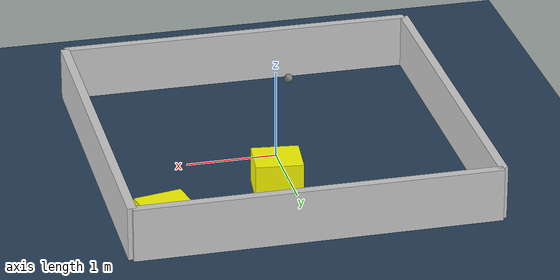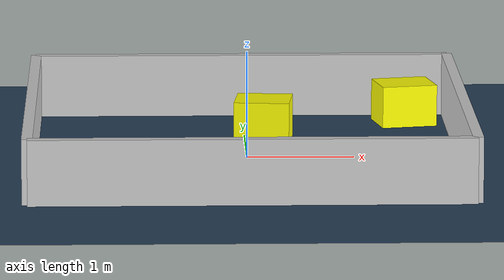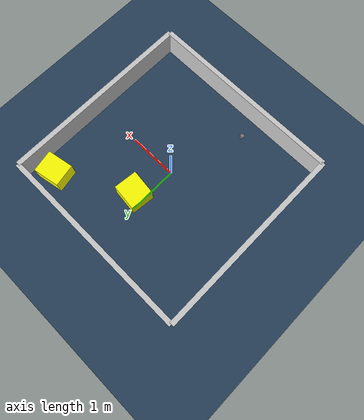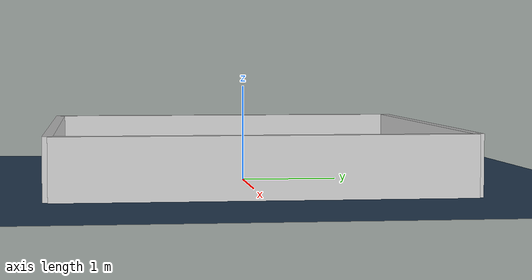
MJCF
<?xml version="1.0" ?>
<mujoco model="generated_environment">
  <option timestep="0.01" integrator="RK4" cone="elliptic"/>
  <default>
    <geom density="1"/>
  </default>
  <asset>
    <texture builtin="gradient" height="3072" rgb1="0.3 0.5 0.7" rgb2="0 0 0" type="skybox" width="512"/>
    <texture builtin="checker" height="300" mark="edge" markrgb="0.8 0.8 0.8" name="groundplane" rgb1="0.2 0.3 0.4" rgb2="0.1 0.2 0.3" type="2d" width="300"/>
    <material name="groundplane" reflectance="0.2" texrepeat="5 5" texture="groundplane" texuniform="true"/>
    <material name="robot" rgba="0.0 1.0 0.0 1"/>
  </asset>
  <worldbody>
    <light dir="0 0 -1" directional="true" pos="0 0 1.5"/>
    <geom condim="4" friction="1.0 0.005 0.001" material="groundplane" name="floor" size="0 0 0.05" type="plane"/>
    <body name="walls">
      <geom name="wall_1" condim="4" pos="-2.0 0.0 0.3" rgba="0.800000011920929 0.800000011920929 0.800000011920929 1.0" size="0.05 2.0 0.3" type="box"/>
      <geom name="wall_2" condim="4" pos="2.0 0.0 0.3" rgba="0.800000011920929 0.800000011920929 0.800000011920929 1.0" size="0.05 2.0 0.3" type="box"/>
      <geom name="wall_3" condim="4" pos="0.0 -2.0 0.3" rgba="0.800000011920929 0.800000011920929 0.800000011920929 1.0" size="2.0 0.05 0.3" type="box"/>
      <geom name="wall_4" condim="4" pos="0.0 2.0 0.3" rgba="0.800000011920929 0.800000011920929 0.800000011920929 1.0" size="2.0 0.05 0.3" type="box"/>
    </body>
    <body name="robot">
      <joint name="joint_x" type="slide" pos="0 0 0" axis="1 0 0"/>
      <joint name="joint_y" type="slide" pos="0 0 0" axis="0 1 0"/>
      <geom name="robot" type="sphere" pos="-0.49756151433657925 -1.4926843276451371 0.2" size="0.05" mass="5." friction="1.0 0.005 0.0001" condim="4"/>
      <site name="sensor_ball"/>
    </body>
    <body name="obstacle_1_movable">
      <geom name="obstacle_1_movable" condim="4" pos="1.563069853750109 1.578013712065855 0.2" euler="0 0 11.041356540759306" friction="1.0 0.005 0.001" rgba="1 1 0 1" size="0.268087425610388 0.22742615313796677 0.2" type="box" mass="0.1"/>
      <joint type="free"/>
    </body>
    <body name="obstacle_2_movable">
      <geom name="obstacle_2_movable" condim="4" pos="0.17652710463760202 0.802941631425659 0.2" euler="0 0 173.64918412893402" friction="1.0 0.005 0.001" rgba="1 1 0 1" size="0.26194600628023845 0.23909931544002647 0.2" type="box" mass="0.1"/>
      <joint type="free"/>
    </body>
  </worldbody>
  <actuator>
    <motor name="actuator_x" joint="joint_x" gear="1" ctrlrange="-1 1"/>
    <motor name="actuator_y" joint="joint_y" gear="1" ctrlrange="-1 1"/>
  </actuator>
</mujoco>
